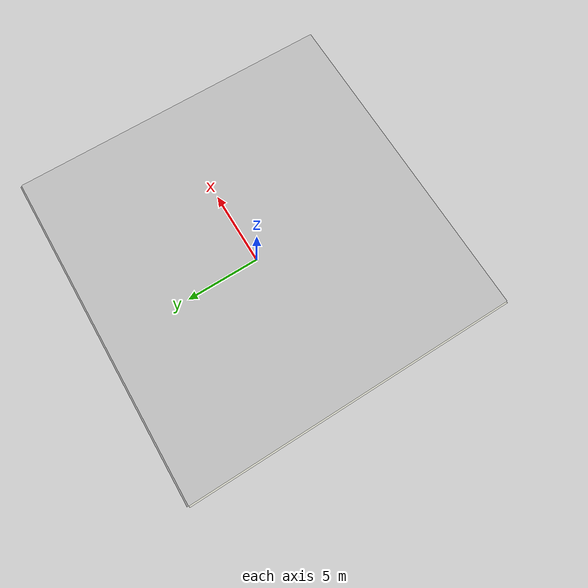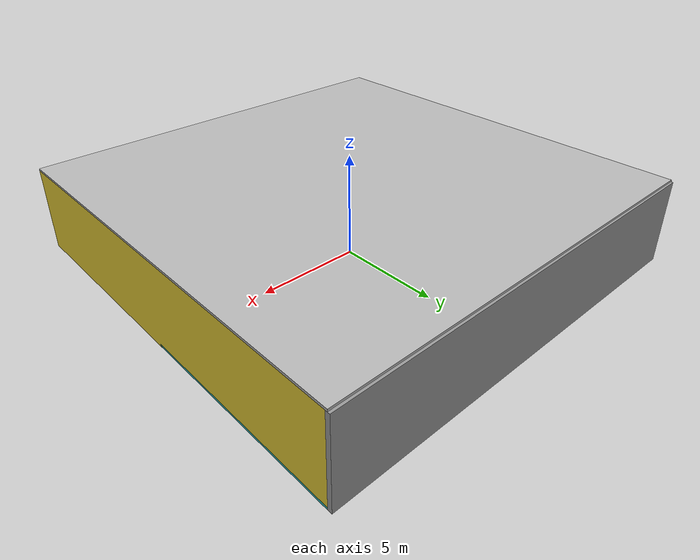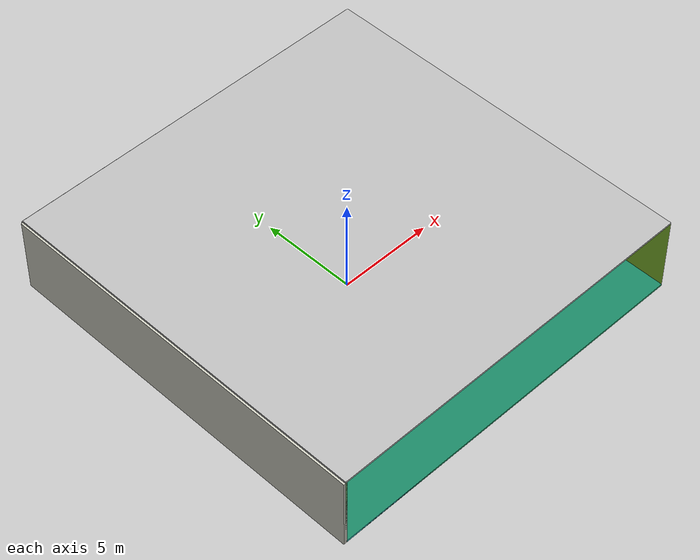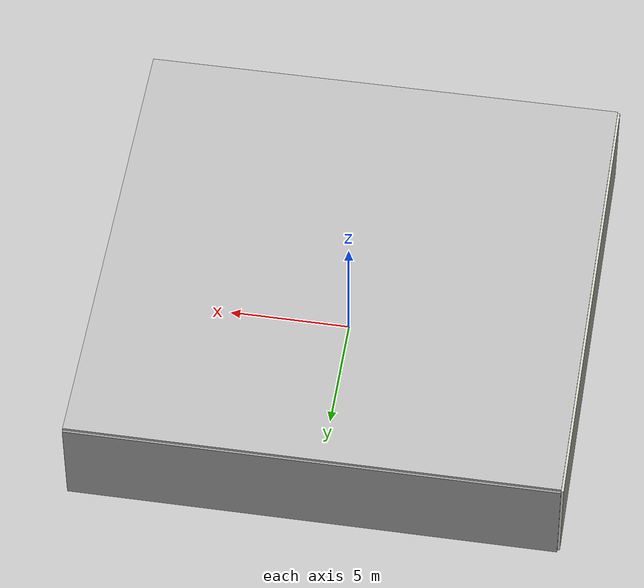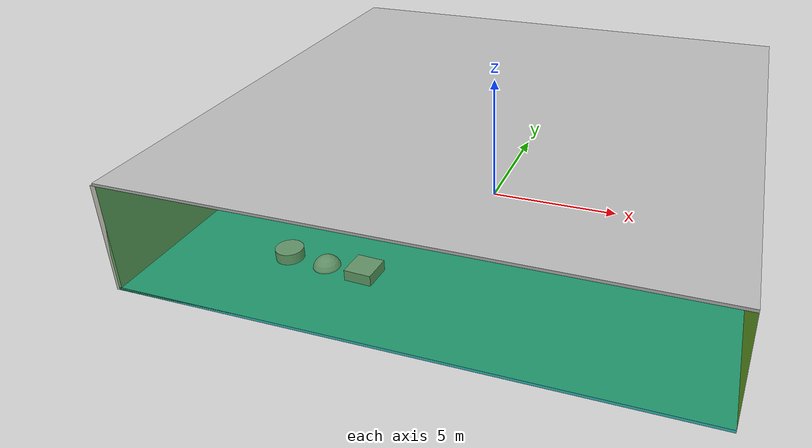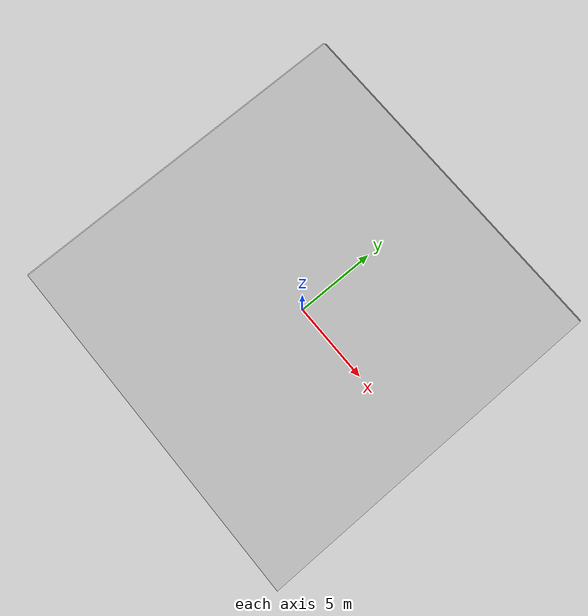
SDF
<sdf version="1.4">
 <world name="default">
  <physics type="ode">
   <max_step_size>0.001</max_step_size>
   <real_time_factor>1</real_time_factor>
   <real_time_update_rate>1000</real_time_update_rate>
   <gravity>0 0 -9.8</gravity>
  </physics>
  <scene><ambient>0.4 0.4 0.4 1</ambient><background>0.7 0.7 0.7 1</background><shadows>1</shadows></scene>
  <model name="Surrounding">
   <static>1</static>
   <link name="Ceiling">
    <collision name="Ceiling_Collision"><geometry><box><size>20 20 0.1</size></box></geometry></collision>
    <visual name="Ceiling_Visual">
     <geometry><box><size>20 20 0.1</size></box></geometry>
     <material>
      <script><uri>file://media/materials/scripts/gazebo.material</uri><name>Gazebo/Pioneer2Body</name></script>
     </material>
    </visual>
    <pose>0 0 4.05 0 0 0</pose>
   </link>
   <link name="Wall_South">
    <collision name="Wall_South_Collision">
     <geometry><box><size>20 0 4</size></box></geometry>
     <pose>0 0 2 0 -0 0</pose>
    </collision>
    <visual name="Wall_South_Visual">
     <pose>0 0 2 0 -0 0</pose>
     <geometry><box><size>20 0 4</size></box></geometry>
     <material>
      <script><uri>file://media/materials/scripts/gazebo.material</uri><name>Gazebo/GreenTransparent</name></script>
     </material>
    </visual>
    <velocity_decay><linear>0</linear><angular>0</angular></velocity_decay>
    <pose>0 -10 0 0 -0 0</pose>
   </link>
   <link name="Wall_East">
    <collision name="Wall_21_Collision">
     <geometry><box><size>20 0 4</size></box></geometry>
     <pose>0 0 2 0 -0 0</pose>
    </collision>
    <visual name="Wall_21_Visual">
     <pose>0 0 2 0 -0 0</pose>
     <geometry><box><size>20 0 4</size></box></geometry>
     <material>
      <script><uri>file://media/materials/scripts/gazebo.material</uri><name>Gazebo/ZincYellow</name></script>
     </material>
    </visual>
    <velocity_decay><linear>0</linear><angular>0</angular></velocity_decay>
    <pose>10 0 0 0 -0 1.5708</pose>
   </link>
   <link name="Wall_North">
    <collision name="Wall_22_Collision">
     <geometry><box><size>20 0.2 4</size></box></geometry>
     <pose>0 0 2 0 -0 0</pose>
    </collision>
    <visual name="Wall_22_Visual">
     <pose>0 0 2 0 -0 0</pose>
     <geometry><box><size>20 0.2 4</size></box></geometry>
     <material>
      <script><uri>file://media/materials/scripts/gazebo.material</uri><name>Gazebo/Grey</name></script>
     </material>
    </visual>
    <velocity_decay><linear>0</linear><angular>0</angular></velocity_decay>
    <pose>0 10 0 0 -0 0</pose>
   </link>
   <link name="Wall_West">
    <collision name="Wall_23_Collision">
     <geometry><box><size>20 0.2 4</size></box></geometry>
     <pose>0 0 2 0 -0 0</pose>
    </collision>
    <visual name="Wall_23_Visual">
     <pose>0 0 2 0 -0 0</pose>
     <geometry><box><size>20 0.2 4</size></box></geometry>
     <material>
      <script><uri>file://media/materials/scripts/gazebo.material</uri><name>Gazebo/PaintedWall</name></script>
     </material>
    </visual>
    <velocity_decay><linear>0</linear><angular>0</angular></velocity_decay>
    <pose>-10 0 0 0 0 -1.5708</pose>
   </link>
   <link name="Ground_link">
    <collision name="collision">
     <pose>0 0 .05 0 -0 0</pose>
     <geometry><box><size>20 20 0.1</size></box></geometry>
    </collision>
    <visual name="visual">
     <pose>0 0 .05 0 -0 0</pose>
     <geometry><box><size>20 20 0.1</size></box></geometry>
     <material>
      <script>
       <uri>file://media/materials/scripts/gazebo.material</uri>
       <name>Gazebo/TurquoiseGlowOutline</name>
      </script>
     </material>
    </visual>
   </link>
   <static>1</static>
  </model>
  <spherical_coordinates>
   <surface_model>EARTH_WGS84</surface_model>
   <latitude_deg>0</latitude_deg>
   <longitude_deg>0</longitude_deg>
   <elevation>0</elevation>
   <heading_deg>0</heading_deg>
  </spherical_coordinates>
  <light name="lightball_0" type="diffuse">
   <diffuse>0.8 0.8 0.8 1</diffuse>
   <specular>0.2 0.2 0.2 1</specular>
   <attenuation>
    <range>100</range>
    <constant>0.7</constant>
    <linear>0.01</linear>
    <quadratic>0.001</quadratic>
   </attenuation>
   <direction>-0.5 0.1 -0.9</direction>
   <pose>-6.5156702032 2.90194164581 2.1170501285 0 0 0</pose>
  </light>
  <light name="lightball_1" type="diffuse">
   <diffuse>0.8 0.8 0.8 1</diffuse>
   <specular>0.2 0.2 0.2 1</specular>
   <attenuation>
    <range>100</range>
    <constant>0.7</constant>
    <linear>0.01</linear>
    <quadratic>0.001</quadratic>
   </attenuation>
   <direction>-0.5 0.1 -0.9</direction>
   <pose>-3.24874998317 1.12419154771 3.87904908634 0 0 0</pose>
  </light>
  <light name="lightball_2" type="diffuse">
   <diffuse>0.8 0.8 0.8 1</diffuse>
   <specular>0.2 0.2 0.2 1</specular>
   <attenuation>
    <range>100</range>
    <constant>0.7</constant>
    <linear>0.01</linear>
    <quadratic>0.001</quadratic>
   </attenuation>
   <direction>-0.5 0.1 -0.9</direction>
   <pose>-4.04437124377 2.19038543016 3.73289765818 0 0 0</pose>
  </light>
  <light name="lightball_3" type="diffuse">
   <diffuse>0.8 0.8 0.8 1</diffuse>
   <specular>0.2 0.2 0.2 1</specular>
   <attenuation>
    <range>100</range>
    <constant>0.7</constant>
    <linear>0.01</linear>
    <quadratic>0.001</quadratic>
   </attenuation>
   <direction>-0.5 0.1 -0.9</direction>
   <pose>-7.1282631677 -0.951452248113 2.94851334015 0 0 0</pose>
  </light>
  <light name="lightball_4" type="diffuse">
   <diffuse>0.8 0.8 0.8 1</diffuse>
   <specular>0.2 0.2 0.2 1</specular>
   <attenuation>
    <range>100</range>
    <constant>0.7</constant>
    <linear>0.01</linear>
    <quadratic>0.001</quadratic>
   </attenuation>
   <direction>-0.5 0.1 -0.9</direction>
   <pose>0.853497703414 -0.511299069736 3.80360872902 0 0 0</pose>
  </light>
  <light name="lightball_5" type="diffuse">
   <diffuse>0.8 0.8 0.8 1</diffuse>
   <specular>0.2 0.2 0.2 1</specular>
   <attenuation>
    <range>100</range>
    <constant>0.7</constant>
    <linear>0.01</linear>
    <quadratic>0.001</quadratic>
   </attenuation>
   <direction>-0.5 0.1 -0.9</direction>
   <pose>-4.9015491823 -4.26178322079 3.75375673593 0 0 0</pose>
  </light>
  <light name="lightball_6" type="diffuse">
   <diffuse>0.8 0.8 0.8 1</diffuse>
   <specular>0.2 0.2 0.2 1</specular>
   <attenuation>
    <range>100</range>
    <constant>0.7</constant>
    <linear>0.01</linear>
    <quadratic>0.001</quadratic>
   </attenuation>
   <direction>-0.5 0.1 -0.9</direction>
   <pose>0.265531788495 7.04261867279 2.63334982609 0 0 0</pose>
  </light>
  <light name="lightball_7" type="diffuse">
   <diffuse>0.8 0.8 0.8 1</diffuse>
   <specular>0.2 0.2 0.2 1</specular>
   <attenuation>
    <range>100</range>
    <constant>0.7</constant>
    <linear>0.01</linear>
    <quadratic>0.001</quadratic>
   </attenuation>
   <direction>-0.5 0.1 -0.9</direction>
   <pose>-1.68498063192 -6.88803882115 1.05980873273 0 0 0</pose>
  </light>
  <light name="lightball_8" type="diffuse">
   <diffuse>0.8 0.8 0.8 1</diffuse>
   <specular>0.2 0.2 0.2 1</specular>
   <attenuation>
    <range>100</range>
    <constant>0.7</constant>
    <linear>0.01</linear>
    <quadratic>0.001</quadratic>
   </attenuation>
   <direction>-0.5 0.1 -0.9</direction>
   <pose>1.366593232 -7.50067402957 1.18772409402 0 0 0</pose>
  </light>
  <light name="lightball_9" type="diffuse">
   <diffuse>0.8 0.8 0.8 1</diffuse>
   <specular>0.2 0.2 0.2 1</specular>
   <attenuation>
    <range>100</range>
    <constant>0.7</constant>
    <linear>0.01</linear>
    <quadratic>0.001</quadratic>
   </attenuation>
   <direction>-0.5 0.1 -0.9</direction>
   <pose>-6.69922671107 0.270288467849 3.41310774642 0 0 0</pose>
  </light>
  <light name="lightball_10" type="diffuse">
   <diffuse>0.8 0.8 0.8 1</diffuse>
   <specular>0.2 0.2 0.2 1</specular>
   <attenuation>
    <range>100</range>
    <constant>0.7</constant>
    <linear>0.01</linear>
    <quadratic>0.001</quadratic>
   </attenuation>
   <direction>-0.5 0.1 -0.9</direction>
   <pose>-0.468614922096 9.59357854585 0.933111700918 0 0 0</pose>
  </light>
  <include>
   <uri>model://textured_shapes</uri>
   <pose>-3.9673741452 -6.73359353569 0 0 0 1.51820013808</pose>
  </include>
  <include><uri>model://cabinet</uri><pose>-4.61186106755 -3.89928957897 0 0 0 0.0892779309429</pose></include>
  <include><uri>model://cabinet</uri><pose>-5.00802821566 4.98679285575 0 0 0 2.96074401814</pose></include>
  <include><uri>model://cabinet</uri><pose>1.31015938731 1.72922779937 0 0 0 0.177169610635</pose></include>
  <include>
   <uri>model://construction_cone</uri>
   <pose>4.93713997353 6.92176659515 0 0 0 2.80261509858</pose>
  </include>
 </world>
</sdf>

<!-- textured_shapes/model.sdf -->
<sdf version="1.6">
  <model name="textured_shapes">
    <pose>0 0 0.5 0 0 0</pose>
    <link name="box">
      <pose>0 -1.5 0 0 0 0</pose>
      <collision name="collision">
        <geometry>
          <box>
            <size>1 1 1</size>
          </box>
        </geometry>
      </collision>
      <visual name="visual">
        <geometry>
          <box>
            <size>1 1 1</size>
          </box>
        </geometry>
        <material>
          <script>
            <uri>model://../model_source/models/textured_shapes/materials/scripts</uri>
            <uri>model://../model_source/models/textured_shapes/materials/textures</uri>
            <name>TexturedShape/Squares</name>
          </script>
        </material>
      </visual>
    </link>
    <link name="sphere">
      <collision name="collision">
        <geometry>
          <sphere>
            <radius>0.5</radius>
          </sphere>
        </geometry>
      </collision>
      <visual name="visual">
        <geometry>
          <sphere>
            <radius>0.5</radius>
          </sphere>
        </geometry>
        <material>
          <script>
            <uri>model://../model_source/models/textured_shapes/materials/scripts</uri>
            <uri>model://../model_source/models/textured_shapes/materials/textures</uri>
            <name>TexturedShape/Squares</name>
          </script>
        </material>
      </visual>
    </link>
    <link name="cylinder">
      <pose>0 1.5 0 0 0 0</pose>
      <collision name="collision">
        <geometry>
          <cylinder>
            <radius>0.5</radius>
            <length>1</length>
          </cylinder>
        </geometry>
      </collision>
      <visual name="visual">
        <geometry>
          <cylinder>
            <radius>0.5</radius>
            <length>1</length>
          </cylinder>
        </geometry>
        <material>
          <script>
            <uri>model://../model_source/models/textured_shapes/materials/scripts</uri>
            <uri>model://../model_source/models/textured_shapes/materials/textures</uri>
            <name>TexturedShape/Squares</name>
          </script>
        </material>
      </visual>
    </link>
  </model>
</sdf>

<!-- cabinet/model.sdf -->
<sdf version="1.5">
  <model name="cabinet">
    <static>true</static>
    <link name="cabinet_bottom_plate">
      <inertial>
        <pose>0 0 -1 0 0 0</pose>
        <inertia>
          <ixx>2.050000</ixx>
          <ixy>0</ixy>
          <ixz>0</ixz>
          <iyy>2.050000</iyy>
          <iyz>0</iyz>
          <izz>2.050000</izz>
        </inertia>
        <mass>25.000000</mass>
      </inertial>
      <collision name="cabinet_bottom_plate_geom">
        <pose>0 0 0.010000 0 0 0</pose>
        <geometry>
          <box>
            <size>0.450000 0.450000 0.020000</size>
          </box>
        </geometry>
      </collision>
      <visual name="cabinet_bottom_plate_geom_visual">
        <pose>0 0 0.010000 0 0 0</pose>
        <geometry>
          <box>
            <size>0.450000 0.450000 0.020000</size>
          </box>
        </geometry>
        <material>
          <script>
            <uri>model://media/materials/scripts/gazebo.material</uri>
            <name>Gazebo/Wood</name>
          </script>
        </material>
      </visual>
      <collision name="cabinet_bottom_plate_geom_cabinet_back_plate">
        <pose>0.235000 0 0.510000 0 0 0</pose>
        <geometry>
          <box>
            <size>0.020000 0.450000 1.020000</size>
          </box>
        </geometry>
      </collision>
      <visual name="cabinet_bottom_plate_geom_cabinet_back_plate_visual">
        <pose>0.235000 0 0.510000 0 0 0</pose>
        <geometry>
          <box>
            <size>0.020000 0.450000 1.020000</size>
          </box>
        </geometry>
        <material>
          <script>
            <uri>model://media/materials/scripts/gazebo.material</uri>
            <name>Gazebo/Wood</name>
          </script>
        </material>
      </visual>
      <collision name="cabinet_bottom_plate_geom_cabinet_left_plate">
        <pose>0 0.235000 0.510000 0 0 0</pose>
        <geometry>
          <box>
            <size>0.450000 0.020000 1.020000</size>
          </box>
        </geometry>
      </collision>
      <visual name="cabinet_bottom_plate_geom_cabinet_left_plate_visual">
        <pose>0 0.235000 0.510000 0 0 0</pose>
        <geometry>
          <box>
            <size>0.450000 0.020000 1.020000</size>
          </box>
        </geometry>
        <material>
          <script>
            <uri>model://media/materials/scripts/gazebo.material</uri>
            <name>Gazebo/Wood</name>
          </script>
        </material>
      </visual>
      <collision name="cabinet_bottom_plate_geom_cabinet_middle_plate">
        <pose>0 0 0.510000 0 0 0</pose>
        <geometry>
          <box>
            <size>0.450000 0.450000 0.020000</size>
          </box>
        </geometry>
      </collision>
      <visual name="cabinet_bottom_plate_geom_cabinet_middle_plate_visual">
        <pose>0 0 0.510000 0 0 0</pose>
        <geometry>
          <box>
            <size>0.450000 0.450000 0.020000</size>
          </box>
        </geometry>
        <material>
          <script>
            <uri>model://media/materials/scripts/gazebo.material</uri>
            <name>Gazebo/Wood</name>
          </script>
        </material>
      </visual>
      <collision name="cabinet_bottom_plate_geom_cabinet_right_plate">
        <pose>0 -0.235000 0.510000 0 0 0</pose>
        <geometry>
          <box>
            <size>0.450000 0.020000 1.020000</size>
          </box>
        </geometry>
      </collision>
      <visual name="cabinet_bottom_plate_geom_cabinet_right_plate_visual">
        <pose>0 -0.235000 0.510000 0 0 0</pose>
        <geometry>
          <box>
            <size>0.450000 0.020000 1.020000</size>
          </box>
        </geometry>
        <material>
          <script>
            <uri>model://media/materials/scripts/gazebo.material</uri>
            <name>Gazebo/Wood</name>
          </script>
        </material>
      </visual>
      <collision name="cabinet_bottom_plate_geom_cabinet_top_plate">
        <pose>0 0 1.010000 0 0 0</pose>
        <geometry>
          <box>
            <size>0.450000 0.450000 0.020000</size>
          </box>
        </geometry>
      </collision>
      <visual name="cabinet_bottom_plate_geom_cabinet_top_plate_visual">
        <pose>0 0 1.010000 0 0 0</pose>
        <geometry>
          <box>
            <size>0.450000 0.450000 0.020000</size>
          </box>
        </geometry>
        <material>
          <script>
            <uri>model://media/materials/scripts/gazebo.material</uri>
            <name>Gazebo/Wood</name>
          </script>
        </material>
      </visual>
    </link>
  </model>
</sdf>

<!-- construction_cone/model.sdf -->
<sdf version="1.5">
  <model name="Construction Cone">
    <link name="link">
      <collision name="collision">
        <geometry>
          <mesh>
            <scale>10 10 10</scale>
            <uri>file://isr-testbed/construction_cone/meshes/construction_cone.dae</uri>
          </mesh>
        </geometry>
      </collision>
      <visual name="visual">
        <geometry>
          <mesh>
            <scale>10 10 10</scale>
            <uri>file://isr-testbed/construction_cone/meshes/construction_cone.dae</uri>
          </mesh>
        </geometry>
      </visual>
    </link>
  </model>
</sdf>
